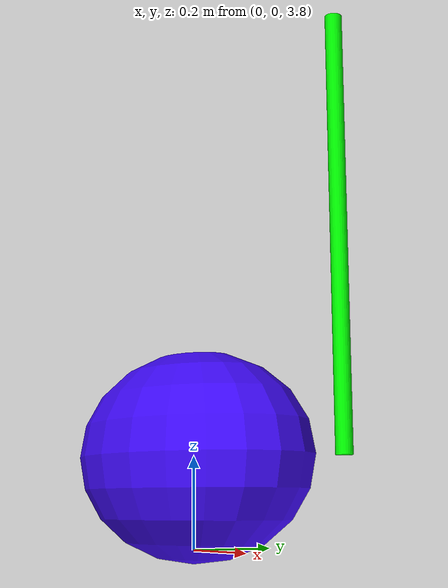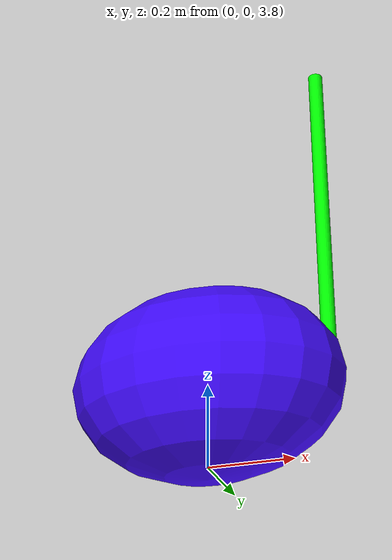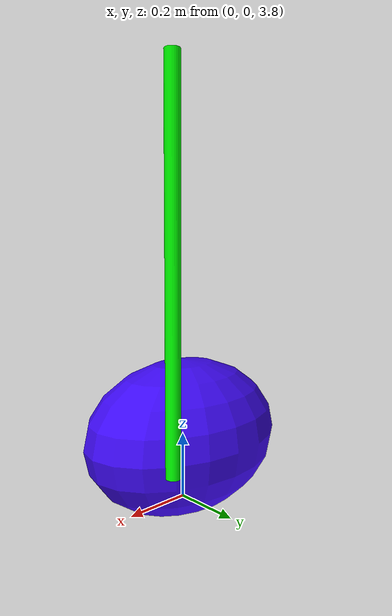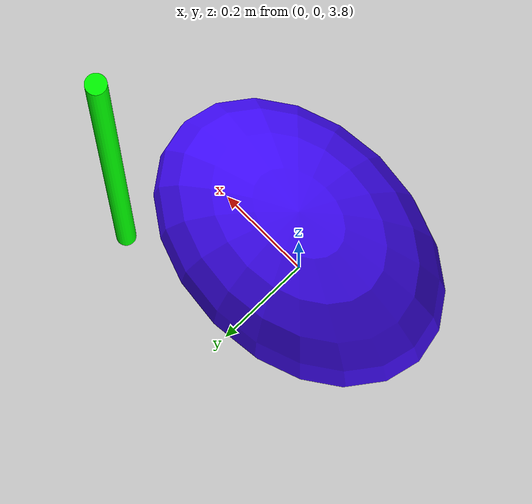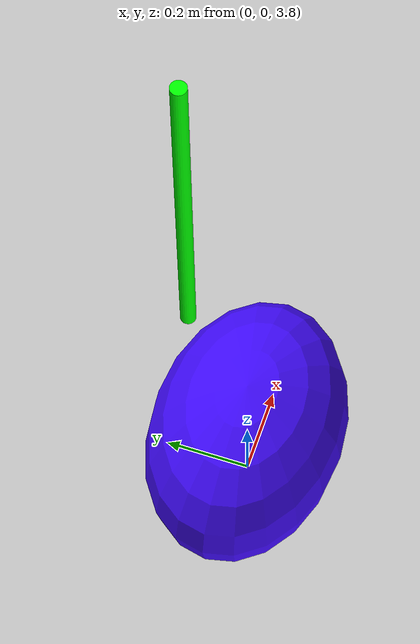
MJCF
<mujoco model="unnamed_model">
  <option timestep="0.01"/>
  <visual>
    <headlight ambient="0.5 0.5 0.5"/>
  </visual>
  <default>
    <default class="/"/>
  </default>
  <worldbody>
    <light name="//unnamed_light_0" class="/" pos="0 0 3" dir="0 0 -1" diffuse="0.5 0.5 0.5"/>
    <geom name="//unnamed_geom_0" class="/" type="plane" size="50 50 0.10000000000000001"/>
    <body name="//unnamed_body_0" pos="0 0 4">
      <joint name="//unnamed_joint_0" class="/" type="free"/>
      <geom name="//unnamed_geom_1" class="/" type="ellipsoid" size="0.32431378885542761 0.22591216122764832 0.22906782358079547" rgba="0.247 0.035000000000000003 0.97999999999999998 1" pos="0 0 0"/>
      <body name="limb0" pos="0.2398109715522837 0.22591216122764832 0.49569907090626575">
        <geom name="//unnamed_geom_2" class="/" type="cylinder" size="0.01919967624232893 0.49569907090626575" rgba="0 1 0 1"/>
        <joint name="0_joint" class="/" type="hinge" pos="0 0 -0.49569907090626575" axis="0 1 0" range="-45 45"/>
      </body>
    </body>
  </worldbody>
  <actuator>
    <motor name="motor_0_joint" class="/" ctrllimited="true" ctrlrange="-45 45" gear="10" joint="0_joint"/>
  </actuator>
</mujoco>
